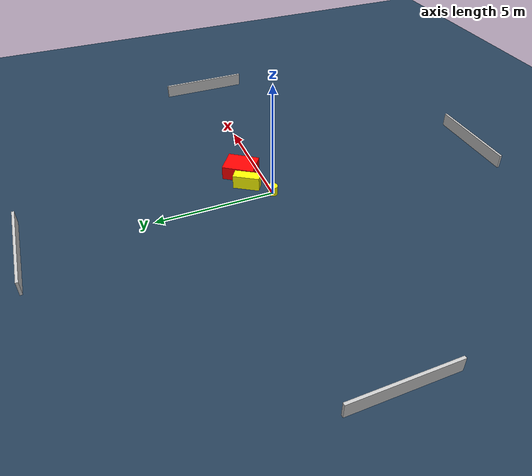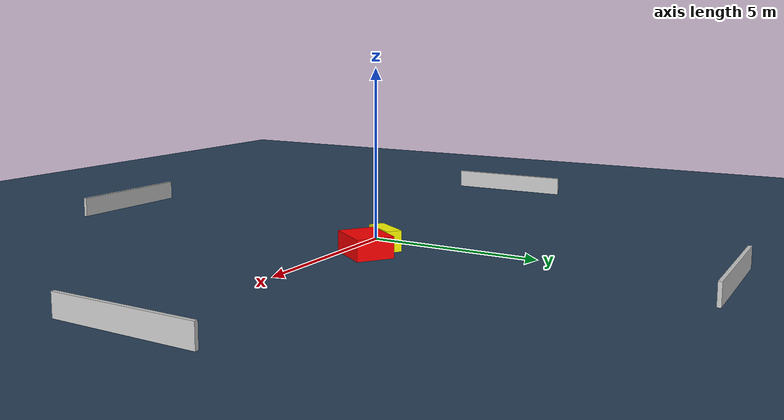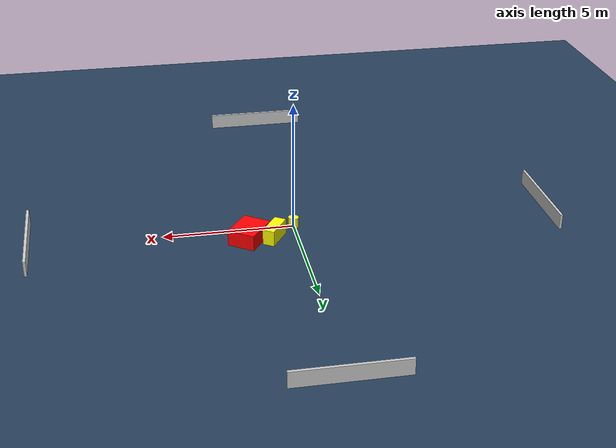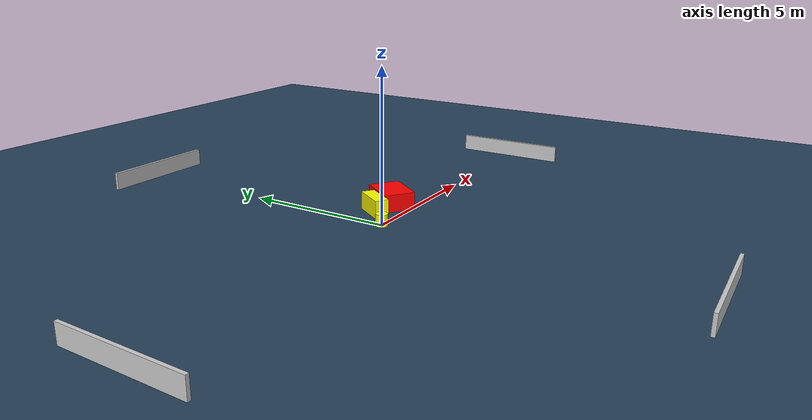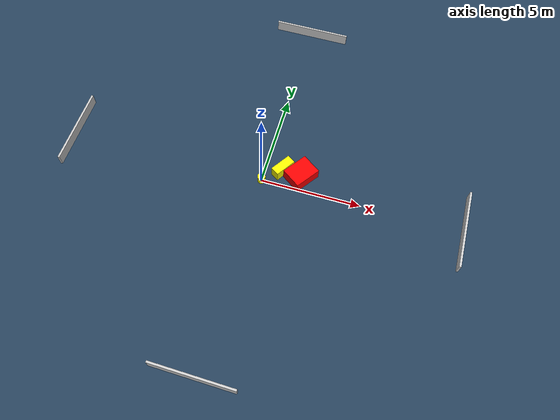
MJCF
<?xml version="1.0" ?>
<mujoco model="generated_environment">
  <option timestep="0.01" integrator="RK4" cone="elliptic"/>
  <default>
    <geom density="1"/>
  </default>
  <asset>
    <texture builtin="gradient" height="3072" name="skybox" rgb1="0.3 0.5 0.7" rgb2="0 0 0" type="skybox" width="512"/>
    <texture builtin="checker" height="300" name="groundplane" rgb1="0.2 0.3 0.4" rgb2="0.1 0.2 0.3" type="2d" width="300"/>
    <material name="groundplane" reflectance="0.2" texrepeat="5 5" texture="groundplane"/>
  </asset>
  <worldbody>
    <light dir="0 0 -1" directional="true" pos="0 0 1.5"/>
    <geom condim="3" friction="0.5 0.005 0.001" material="groundplane" name="floor" pos="0 0 0" size="0 0 0.05" type="plane"/>
    <body name="walls">
      <geom name="wall_1" condim="4" pos="-10.0 0.0 0.3" rgba="0.800000011920929 0.800000011920929 0.800000011920929 1.0" size="0.05 2.0 0.3" type="box"/>
      <geom name="wall_2" condim="4" pos="10.0 0.0 0.3" rgba="0.800000011920929 0.800000011920929 0.800000011920929 1.0" size="0.05 2.0 0.3" type="box"/>
      <geom name="wall_3" condim="4" pos="0.0 -10.0 0.3" rgba="0.800000011920929 0.800000011920929 0.800000011920929 1.0" size="2.0 0.05 0.3" type="box"/>
      <geom name="wall_4" condim="4" pos="0.0 10.0 0.3" rgba="0.800000011920929 0.800000011920929 0.800000011920929 1.0" size="2.0 0.05 0.3" type="box"/>
    </body>
    <body name="robot">
      <joint name="joint_x" type="slide" pos="0 0 0" axis="1 0 0"/>
      <joint name="joint_y" type="slide" pos="0 0 0" axis="0 1 0"/>
      <geom name="robot" type="cylinder" pos="0.0 0.0 0.2" size="0.2 0.2 0.0" mass="5.0" friction="1.0 0.005 0.0001" condim="4" rgba="1.0 1.0 0.0 1.0"/>
    </body>
    <body name="obstacle_1_movable">
      <geom name="obstacle_1_movable" condim="4" pos="0.8739326918327722 0.8245755821473336 0.3" euler="0 0 147.079954228258" friction="0.0 0.005 0.001" rgba="1.0 1.0 0.0 1.0" size="0.22766059764495383 0.560213037104875 0.3" type="box" mass="0.1"/>
      <joint type="free"/>
    </body>
    <body name="obstacle_2_static">
      <geom name="obstacle_2_static" condim="4" pos="1.8220188617253672 0.7622744883512331 0.3" euler="0 0 54.699057127844846" friction="0.0 0.005 0.001" rgba="1.0 0.0 0.0 1.0" size="0.6826162959953621 0.5398601585971907 0.3" type="box"/>
    </body>
  </worldbody>
  <actuator>
    <motor name="actuator_x" joint="joint_x" gear="1" ctrlrange="-1 1"/>
    <motor name="actuator_y" joint="joint_y" gear="1" ctrlrange="-1 1"/>
  </actuator>
</mujoco>
